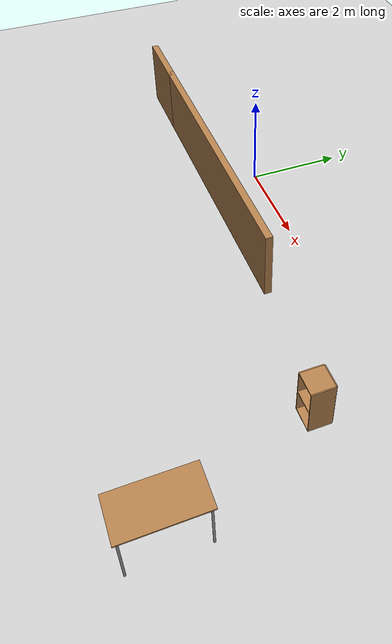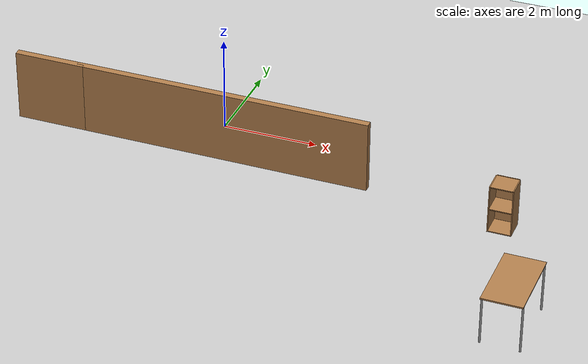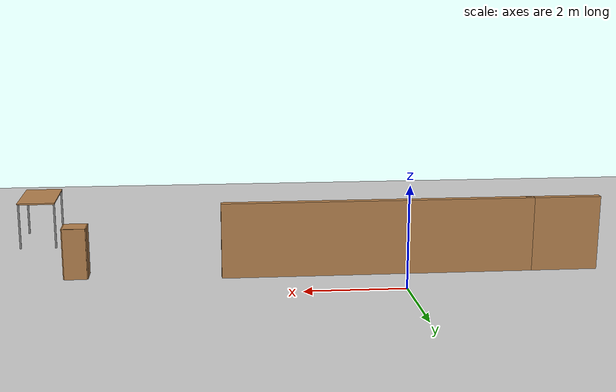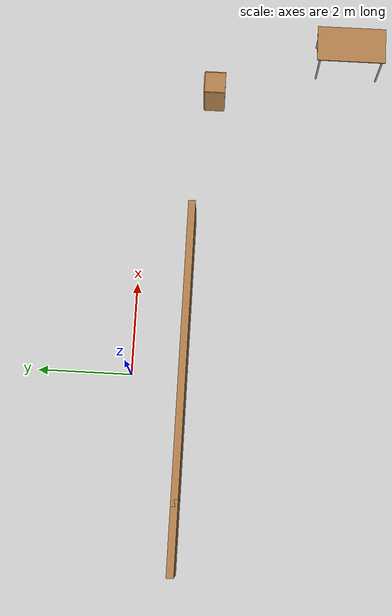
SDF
<sdf version="1.7">
 <world name="default">
  <light name="sun" type="directional">
   <pose>0 0 10 0 -0 0</pose>
   <diffuse>0.8 0.8 0.8 1</diffuse>
   <specular>0.2 0.2 0.2 1</specular>
   <attenuation>
    <range>1000</range>
    <constant>0.9</constant>
    <linear>0.01</linear>
    <quadratic>0.001</quadratic>
   </attenuation>
   <direction>-0.5 0.1 -0.9</direction>
   <spot><inner_angle>0</inner_angle><outer_angle>0</outer_angle><falloff>0</falloff></spot>
  </light>
  <model name="ground_plane">
   <static>1</static>
   <link name="link">
    <collision name="collision">
     <geometry><plane><normal>0 0 1</normal><size>100 100</size></plane></geometry>
     <surface>
      <contact><collide_bitmask>65535</collide_bitmask></contact>
      <friction><ode><mu>100</mu><mu2>50</mu2></ode></friction>
     </surface>
    </collision>
    <visual name="visual">
     <cast_shadows>0</cast_shadows>
     <geometry><plane><normal>0 0 1</normal><size>100 100</size></plane></geometry>
     <material>
      <script><uri>file://media/materials/scripts/gazebo.material</uri><name>Gazebo/Grey</name></script>
     </material>
    </visual>
   </link>
  </model>
  <gravity>0 0 -9.8</gravity>
  <magnetic_field>6e-06 2.3e-05 -4.2e-05</magnetic_field>
  <atmosphere type="adiabatic"/>
  <physics type="ode">
   <max_step_size>0.001</max_step_size>
   <real_time_factor>1</real_time_factor>
   <real_time_update_rate>1000</real_time_update_rate>
  </physics>
  <scene><ambient>0.4 0.4 0.4 1</ambient><background>0.7 0.7 0.7 1</background><shadows>1</shadows></scene>
  <spherical_coordinates>
   <surface_model>EARTH_WGS84</surface_model>
   <latitude_deg>0</latitude_deg>
   <longitude_deg>0</longitude_deg>
   <elevation>0</elevation>
   <heading_deg>0</heading_deg>
  </spherical_coordinates>
  <model name="düzduvar">
   <pose>-0.29643 -1.11662 0 0 -0 0</pose>
   <link name="Wall_6">
    <collision name="Wall_6_Collision">
     <geometry><box><size>1.5 0.15 1.5</size></box></geometry>
     <pose>0 0 0.75 0 -0 0</pose>
    </collision>
    <visual name="Wall_6_Visual">
     <pose>0 0 0.75 0 -0 0</pose>
     <geometry><box><size>1.5 0.15 1.5</size></box></geometry>
     <material>
      <script><uri>file://media/materials/scripts/gazebo.material</uri><name>Gazebo/Wood</name></script>
      <ambient>1 1 1 1</ambient>
     </material>
     <meta><layer>0</layer></meta>
    </visual>
    <pose>-3.05 -0 0 0 -0 3.14159</pose>
   </link>
   <link name="Wall_8">
    <collision name="Wall_8_Collision">
     <geometry><box><size>6.25 0.15 1.5</size></box></geometry>
     <pose>0 0 0.75 0 -0 0</pose>
    </collision>
    <visual name="Wall_8_Visual">
     <pose>0 0 0.75 0 -0 0</pose>
     <geometry><box><size>6.25 0.15 1.5</size></box></geometry>
     <material>
      <script><uri>file://media/materials/scripts/gazebo.material</uri><name>Gazebo/Wood</name></script>
      <ambient>1 1 1 1</ambient>
     </material>
     <meta><layer>0</layer></meta>
    </visual>
    <pose>0.675 -0 0 0 -0 0</pose>
   </link>
   <static>1</static>
  </model>
  <model name="table_0">
   <static>1</static>
   <link name="link">
    <collision name="surface">
     <pose>0 0 1 0 -0 0</pose>
     <geometry><box><size>1.5 0.8 0.03</size></box></geometry>
     <surface><friction><ode><mu>0.6</mu><mu2>0.6</mu2></ode></friction></surface>
    </collision>
    <visual name="visual1">
     <pose>0 0 1 0 -0 0</pose>
     <geometry><box><size>1.5 0.8 0.03</size></box></geometry>
     <material>
      <script><uri>file://media/materials/scripts/gazebo.material</uri><name>Gazebo/Wood</name></script>
     </material>
    </visual>
    <collision name="front_left_leg">
     <pose>0.68 0.38 0.5 0 -0 0</pose>
     <geometry><cylinder><radius>0.02</radius><length>1</length></cylinder></geometry>
    </collision>
    <visual name="front_left_leg">
     <pose>0.68 0.38 0.5 0 -0 0</pose>
     <geometry><cylinder><radius>0.02</radius><length>1</length></cylinder></geometry>
     <material>
      <script><uri>file://media/materials/scripts/gazebo.material</uri><name>Gazebo/Grey</name></script>
     </material>
    </visual>
    <collision name="front_right_leg">
     <pose>0.68 -0.38 0.5 0 -0 0</pose>
     <geometry><cylinder><radius>0.02</radius><length>1</length></cylinder></geometry>
    </collision>
    <visual name="front_right_leg">
     <pose>0.68 -0.38 0.5 0 -0 0</pose>
     <geometry><cylinder><radius>0.02</radius><length>1</length></cylinder></geometry>
     <material>
      <script><uri>file://media/materials/scripts/gazebo.material</uri><name>Gazebo/Grey</name></script>
     </material>
    </visual>
    <collision name="back_right_leg">
     <pose>-0.68 -0.38 0.5 0 -0 0</pose>
     <geometry><cylinder><radius>0.02</radius><length>1</length></cylinder></geometry>
    </collision>
    <visual name="back_right_leg">
     <pose>-0.68 -0.38 0.5 0 -0 0</pose>
     <geometry><cylinder><radius>0.02</radius><length>1</length></cylinder></geometry>
     <material>
      <script><uri>file://media/materials/scripts/gazebo.material</uri><name>Gazebo/Grey</name></script>
     </material>
    </visual>
    <collision name="back_left_leg">
     <pose>-0.68 0.38 0.5 0 -0 0</pose>
     <geometry><cylinder><radius>0.02</radius><length>1</length></cylinder></geometry>
    </collision>
    <visual name="back_left_leg">
     <pose>-0.68 0.38 0.5 0 -0 0</pose>
     <geometry><cylinder><radius>0.02</radius><length>1</length></cylinder></geometry>
     <material>
      <script><uri>file://media/materials/scripts/gazebo.material</uri><name>Gazebo/Grey</name></script>
     </material>
    </visual>
   </link>
   <pose>7.41991 -4.40982 0 0 -0 1.57036</pose>
  </model>
  <model name="cabinet_2">
   <static>1</static>
   <link name="cabinet_bottom_plate">
    <inertial>
     <pose>0 0 -1 0 -0 0</pose>
     <inertia><ixx>2.05</ixx><ixy>0</ixy><ixz>0</ixz><iyy>2.05</iyy><iyz>0</iyz><izz>2.05</izz></inertia>
     <mass>25</mass>
    </inertial>
    <collision name="cabinet_bottom_plate_geom">
     <pose>0 0 0.01 0 -0 0</pose>
     <geometry><box><size>0.45 0.45 0.02</size></box></geometry>
    </collision>
    <visual name="cabinet_bottom_plate_geom_visual">
     <pose>0 0 0.01 0 -0 0</pose>
     <geometry><box><size>0.45 0.45 0.02</size></box></geometry>
     <material>
      <script><uri>file://media/materials/scripts/gazebo.material</uri><name>Gazebo/Wood</name></script>
     </material>
    </visual>
    <collision name="cabinet_bottom_plate_geom_cabinet_back_plate">
     <pose>0.235 0 0.51 0 -0 0</pose>
     <geometry><box><size>0.02 0.45 1.02</size></box></geometry>
    </collision>
    <visual name="cabinet_bottom_plate_geom_cabinet_back_plate_visual">
     <pose>0.235 0 0.51 0 -0 0</pose>
     <geometry><box><size>0.02 0.45 1.02</size></box></geometry>
     <material>
      <script><uri>file://media/materials/scripts/gazebo.material</uri><name>Gazebo/Wood</name></script>
     </material>
    </visual>
    <collision name="cabinet_bottom_plate_geom_cabinet_left_plate">
     <pose>0 0.235 0.51 0 -0 0</pose>
     <geometry><box><size>0.45 0.02 1.02</size></box></geometry>
    </collision>
    <visual name="cabinet_bottom_plate_geom_cabinet_left_plate_visual">
     <pose>0 0.235 0.51 0 -0 0</pose>
     <geometry><box><size>0.45 0.02 1.02</size></box></geometry>
     <material>
      <script><uri>file://media/materials/scripts/gazebo.material</uri><name>Gazebo/Wood</name></script>
     </material>
    </visual>
    <collision name="cabinet_bottom_plate_geom_cabinet_middle_plate">
     <pose>0 0 0.51 0 -0 0</pose>
     <geometry><box><size>0.45 0.45 0.02</size></box></geometry>
    </collision>
    <visual name="cabinet_bottom_plate_geom_cabinet_middle_plate_visual">
     <pose>0 0 0.51 0 -0 0</pose>
     <geometry><box><size>0.45 0.45 0.02</size></box></geometry>
     <material>
      <script><uri>file://media/materials/scripts/gazebo.material</uri><name>Gazebo/Wood</name></script>
     </material>
    </visual>
    <collision name="cabinet_bottom_plate_geom_cabinet_right_plate">
     <pose>0 -0.235 0.51 0 -0 0</pose>
     <geometry><box><size>0.45 0.02 1.02</size></box></geometry>
    </collision>
    <visual name="cabinet_bottom_plate_geom_cabinet_right_plate_visual">
     <pose>0 -0.235 0.51 0 -0 0</pose>
     <geometry><box><size>0.45 0.02 1.02</size></box></geometry>
     <material>
      <script><uri>file://media/materials/scripts/gazebo.material</uri><name>Gazebo/Wood</name></script>
     </material>
    </visual>
    <collision name="cabinet_bottom_plate_geom_cabinet_top_plate">
     <pose>0 0 1.01 0 -0 0</pose>
     <geometry><box><size>0.45 0.45 0.02</size></box></geometry>
    </collision>
    <visual name="cabinet_bottom_plate_geom_cabinet_top_plate_visual">
     <pose>0 0 1.01 0 -0 0</pose>
     <geometry><box><size>0.45 0.45 0.02</size></box></geometry>
     <material>
      <script><uri>file://media/materials/scripts/gazebo.material</uri><name>Gazebo/Wood</name></script>
     </material>
    </visual>
   </link>
   <pose>6.36859 -1.45561 0 0 -0 1.57294</pose>
  </model>
 </world>
</sdf>
